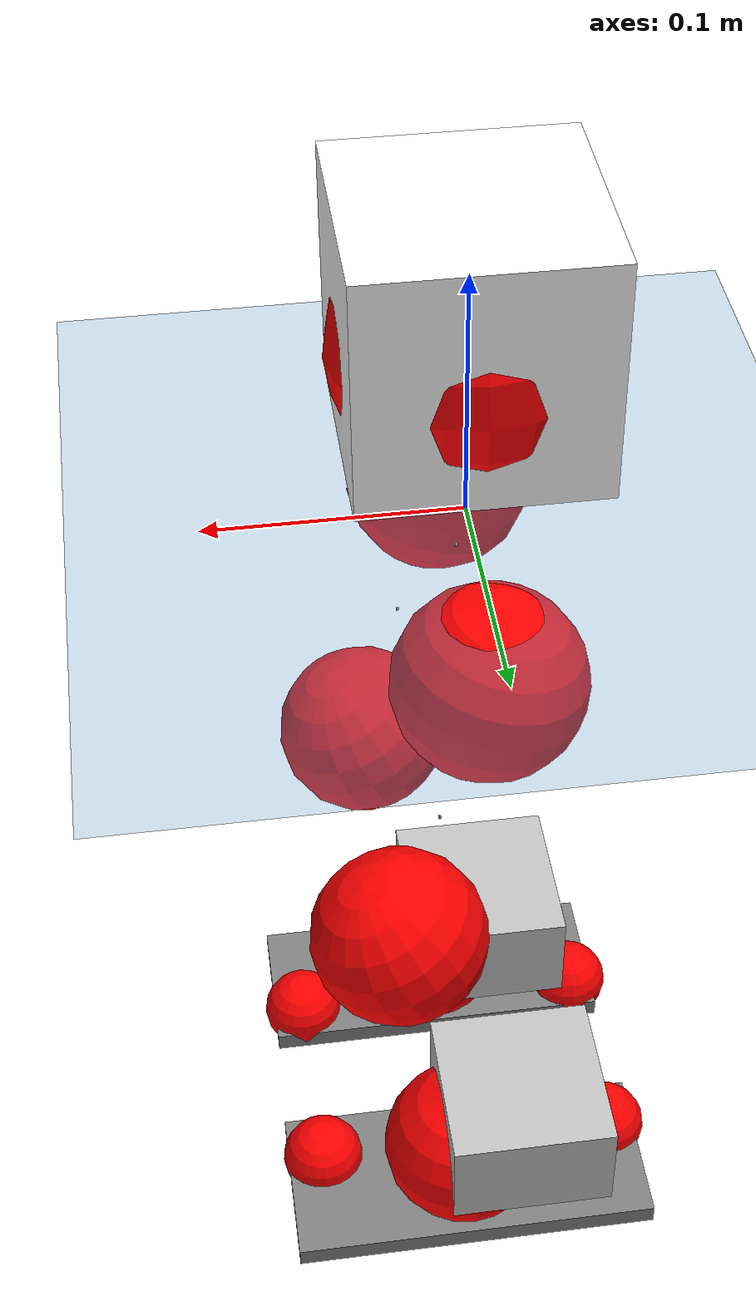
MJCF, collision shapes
<mujoco model="pi_12dof_release_v1">
  <compiler angle="radian" assetdir="assets" balanceinertia="true" inertiafromgeom="false"/>

  <option timestep="0.005" density="1.2" viscosity="2e-05"/>

  <size nkey="1"/>

  <visual>
    <quality shadowsize="8192"/>
    <map shadowclip="0.5"/>
  </visual>

  <default>
    <default class="/">
      <joint armature="0.01" damping="0.01" frictionloss="0.01"/>
      <geom contype="0" conaffinity="0" group="1" solref="-1000 -80"/>
      <site size="0.01 0.005 0.005" group="5"/>
      <general forcelimited="true" biastype="affine" gainprm="20" biasprm="0 -20 -0.5"/>
      <default class="foot">
        <geom size="0.0845 0.036 0.005" type="box" condim="6" group="4" priority="1" friction="0.9 0.2 0.2" solimp="0.015 1 0.005"/>
      </default>
      <default class="reward_collision_sphere">
        <geom group="5" rgba="1 0 0 1"/>
      </default>
    </default>
  </default>

  <asset>
    <texture type="skybox" colorspace="auto" name="//unnamed_texture_0" builtin="gradient" rgb1="0.95 0.95 0.95" rgb2="0.95 0.95 0.95" width="100" height="600"/>
    <texture type="2d" colorspace="auto" name="texplane" builtin="checker" rgb1="0.345 0.575 0.748" rgb2="0.345 0.575 0.748" markrgb="1 1 1" width="512" height="512"/>
    <material name="MatPlane" class="/" texture="texplane" texuniform="true" texrepeat="2 2" specular="0.9"/>
    <mesh name="baselink_1" class="/" file="baselink_1.STL"/>
    <mesh name="r_hip_pitch_link" class="/" file="r_hip_pitch_link.STL"/>
    <mesh name="r_hip_roll_link" class="/" file="r_hip_roll_link.STL"/>
    <mesh name="r_thigh_link" class="/" file="r_thigh_link.STL"/>
    <mesh name="r_calf_link" class="/" file="r_calf_link.STL"/>
    <mesh name="r_ankle_pitch_link" class="/" file="r_ankle_pitch_link.STL"/>
    <mesh name="r_ankle_roll_link" class="/" file="r_ankle_roll_link.STL"/>
    <mesh name="l_hip_pitch_link" class="/" file="l_hip_pitch_link.STL"/>
    <mesh name="l_hip_roll_link" class="/" file="l_hip_roll_link.STL"/>
    <mesh name="l_thigh_link" class="/" file="l_thigh_link.STL"/>
    <mesh name="l_calf_link" class="/" file="l_calf_link.STL"/>
    <mesh name="l_ankle_pitch_link" class="/" file="l_ankle_pitch_link.STL"/>
    <mesh name="l_ankle_roll_link" class="/" file="l_ankle_roll_link.STL"/>
  </asset>

  <worldbody>
    <geom name="floor" class="/" size="100 100 0.125" type="plane" group="0" material="MatPlane"/>
    <light name="toplight_shadow" class="/" pos="0 0 5" dir="0.0990148 0.0990148 -0.990148" type="directional" ambient="0.04 0.04 0.04" diffuse="0.55 0.55 0.55" specular="0.12 0.12 0.12"/>
    <light name="toplight_fill" class="/" pos="0 0 5" dir="0.0990148 0.0990148 -0.990148" type="directional" castshadow="false" ambient="0.04 0.04 0.04" diffuse="0.3 0.3 0.3" specular="0.08 0.08 0.08"/>
    <body name="trunk" pos="0.000164802 -0.000365653 0.000290339" quat="1 -0.00017164 0.000140604 -3.43265e-05">
      <inertial pos="0.00225567 -0.000751024 0.0408398" quat="0.694344 0.00929943 0.00522536 0.719564" mass="1.72267" diaginertia="0.00971067 0.00257733 0.00448746"/>
      <joint name="//unnamed_joint_0" type="free"/>
      <geom name="//unnamed_geom_1" class="/" type="mesh" density="0" rgba="1 1 1 1" mesh="baselink_1"/>
      <geom name="//unnamed_geom_2" class="/" size="0.0465555 0.0465555 0.0465555" pos="0 0 0.0811484" type="box" rgba="1 1 1 1"/>
      <geom name="//unnamed_geom_3" class="reward_collision_sphere" size="0.0512111" pos="0 0 0.0710048"/>
      <site name="imu" class="/" pos="0.00157605 -0.00118907 -0.00383314" size="0.0093111"/>
      <camera name="track" class="/" pos="0 -1.56047 0" quat="0.707107 0.707107 0 0" mode="trackcom"/>
      <camera name="ego_camera" class="/" pos="0.0749054 0 0.182584" quat="-0.5 -0.5 0.5 0.5"/>
      <body name="r_hip_pitch_link" pos="0.000293504 -0.0176077 -0.0324405" quat="0.992194 -7.52465e-05 -0.124707 -0.000107317">
        <inertial pos="0.000601765 -0.0427899 -3.76207e-05" quat="-0.0187604 0.705991 -0.0284363 0.707401" mass="0.297398" diaginertia="0.000107396 2.86667e-05 8.92589e-05"/>
        <joint name="r_hip_pitch_joint" class="/" pos="0 0 0" axis="-0.00557478 -0.999983 0.00147349" range="-1.73666 1.23252" armature="0.00928873" damping="0.0159747" frictionloss="0.0092981"/>
        <geom name="//unnamed_geom_4" class="/" type="mesh" density="0" rgba="0.75294 0.75294 0.75294 1" mesh="r_hip_pitch_link"/>
        <geom name="//unnamed_geom_5" class="/" size="0.000465555 0.000465555 0.000465555" type="box" rgba="0.75294 0.75294 0.75294 1"/>
        <body name="r_hip_roll_link" pos="0.00125952 -0.0435062 0.000371345" quat="1 -0.000382711 -2.7263e-05 0.000176427">
          <inertial pos="-0.00125727 -0.000305776 -0.0636064" quat="0.706027 -0.0795572 -0.0789564 0.699258" mass="0.312801" diaginertia="0.000332358 8.05069e-05 0.00013809"/>
          <joint name="r_hip_roll_joint" class="/" pos="0 0 0" axis="-0.999999 0.00129164 0.00047294" range="-0.11343 0.496244" armature="0.0091923" damping="0.0117014" frictionloss="0.00963996"/>
          <geom name="//unnamed_geom_6" class="/" type="mesh" density="0" rgba="0.75294 0.75294 0.75294 1" mesh="r_hip_roll_link"/>
          <geom name="//unnamed_geom_7" class="/" size="0.000465555 0.000465555 0.000465555" type="box" rgba="0.75294 0.75294 0.75294 1"/>
          <geom name="//unnamed_geom_8" class="reward_collision_sphere" size="0.0372444"/>
          <body name="r_thigh_link" pos="-0.000315639 -0.000157714 -0.0705481" quat="1 -9.35233e-06 0.000269517 7.78141e-05">
            <inertial pos="-0.000442192 0.000626379 -0.0481817" quat="0.736204 0.676756 -0.00144409 -0.00145327" mass="0.0888806" diaginertia="0.000123622 2.70247e-05 6.16079e-05"/>
            <joint name="r_thigh_joint" class="/" pos="0 0 0" axis="-0.000930382 0.00310726 -0.999995" range="-0.315977 0.607057" armature="0.00931925" damping="0.00391764" frictionloss="0.00963976"/>
            <geom name="//unnamed_geom_9" class="/" type="mesh" density="0" rgba="0.75294 0.75294 0.75294 1" mesh="r_thigh_link"/>
            <geom name="//unnamed_geom_10" class="/" size="0.000465555 0.000465555 0.000465555" type="box" rgba="0.75294 0.75294 0.75294 1"/>
            <body name="r_calf_link" pos="-0.00107301 -0.000281933 -0.0713497" quat="0.947621 -8.37391e-05 0.319396 2.79221e-05">
              <inertial pos="0.000292656 -0.000793555 -0.0714707" quat="0.999969 -0.00617638 -0.00319686 0.00371231" mass="0.66464" diaginertia="0.00354168 0.00103134 0.000188829"/>
              <joint name="r_calf_joint" class="/" pos="0 0 0" axis="0.00203742 -0.999976 0.00666932" range="-1.64742 0.646615" armature="0.0089378" damping="0.0063137" frictionloss="0.00912082"/>
              <geom name="//unnamed_geom_11" class="/" type="mesh" density="0" rgba="0.75294 0.75294 0.75294 1" mesh="r_calf_link"/>
              <geom name="//unnamed_geom_12" class="/" size="0.000465555 0.000465555 0.000465555" type="box" rgba="0.75294 0.75294 0.75294 1"/>
              <geom name="//unnamed_geom_13" class="reward_collision_sphere" size="0.0372444"/>
              <body name="r_ankle_pitch_link" pos="0.000695693 0.0010866 -0.142765" quat="0.980061 6.65105e-07 -0.198698 -5.23666e-05">
                <inertial pos="0.00570447 0.00415877 0.000253811" quat="0.00174517 0.707007 -0.00236807 0.707201" mass="0.141988" diaginertia="0.000303944 6.44374e-05 0.000128531"/>
                <joint name="r_ankle_pitch_joint" class="/" pos="0 0 0" axis="0.00247422 -0.999994 0.00249077" range="-1.30809 0.498893" armature="0.00936718" damping="0.00582582" frictionloss="0.00965552"/>
                <geom name="//unnamed_geom_14" class="/" type="mesh" density="0" rgba="0.75294 0.75294 0.75294 1" mesh="r_ankle_pitch_link"/>
                <geom name="//unnamed_geom_15" class="/" size="0.0363133 0.0372444 0.0232778" type="box" rgba="0.75294 0.75294 0.75294 1"/>
                <body name="r_ankle_roll_link" pos="0.0761842 0.00165219 4.39622e-05" quat="1 0.000199198 -0.000191806 -0.000427573">
                  <inertial pos="-0.0226589 0.000961929 -0.0150205" quat="0.55947 0.430838 0.436126 0.557823" mass="0.417871" diaginertia="0.00110789 0.00029669 0.000306343"/>
                  <joint name="r_ankle_roll_joint" class="/" pos="0 0 0" axis="-0.999993 -0.00108214 -0.00353484" range="-0.152077 0.144434" armature="0.00949831" damping="0.00949174" frictionloss="0.00913855"/>
                  <geom name="//unnamed_geom_16" class="/" type="mesh" density="0" rgba="0.75294 0.75294 0.75294 1" mesh="r_ankle_roll_link"/>
                  <geom name="//unnamed_geom_17" class="/" type="mesh" rgba="0.75294 0.75294 0.75294 1" mesh="r_ankle_roll_link"/>
                  <geom name="right_foot" class="foot" size="0.0799155 0.0332825 0.0045423" pos="-0.0509357 0 -0.0446316"/>
                  <geom name="//unnamed_geom_19" class="reward_collision_sphere" size="0.0372444" pos="-0.049937 0 -0.0202871"/>
                  <geom name="//unnamed_geom_20" class="reward_collision_sphere" size="0.0186222" pos="0.0149811 0.0156047 -0.0405742"/>
                  <geom name="//unnamed_geom_21" class="reward_collision_sphere" size="0.0186222" pos="-0.119849 0.0156047 -0.0405742"/>
                  <site name="right_foot" class="foot" pos="-0.0509357 0 -0.0446316" size="0.0093111"/>
                </body>
              </body>
            </body>
          </body>
        </body>
      </body>
      <body name="l_hip_pitch_link" pos="0.00120911 0.0188737 -0.0330758" quat="0.992217 5.89195e-06 -0.12452 -0.000144344">
        <inertial pos="0.00145477 0.0406683 -0.000118628" quat="-0.0385916 0.705606 0.0295549 0.706936" mass="0.31789" diaginertia="0.000127083 3.04553e-05 0.000108369"/>
        <joint name="l_hip_pitch_joint" class="/" pos="0 0 0" axis="0.000658687 0.99998 0.00632353" range="-1.25556 1.75977" armature="0.0089839" damping="0.014627" frictionloss="0.00894456"/>
        <geom name="//unnamed_geom_22" class="/" type="mesh" density="0" rgba="0.75294 0.75294 0.75294 1" mesh="l_hip_pitch_link"/>
        <geom name="//unnamed_geom_23" class="/" size="0.000465555 0.000465555 0.000465555" type="box" rgba="0.75294 0.75294 0.75294 1"/>
        <body name="l_hip_roll_link" pos="-0.000897588 0.043079 0.000440218" quat="1 -7.52389e-05 0.000321558 -2.76842e-05">
          <inertial pos="-0.00154238 0.000781627 -0.0620203" quat="0.699424 -0.0744367 -0.0755305 0.706796" mass="0.312801" diaginertia="0.000331594 7.92372e-05 0.0001349"/>
          <joint name="l_hip_roll_joint" class="/" pos="0 0 0" axis="-0.999988 -0.000962146 0.00489618" range="-0.505154 0.105584" armature="0.00916135" damping="0.00804178" frictionloss="0.00974298"/>
          <geom name="//unnamed_geom_24" class="/" type="mesh" density="0" rgba="0.75294 0.75294 0.75294 1" mesh="l_hip_roll_link"/>
          <geom name="//unnamed_geom_25" class="/" size="0.000465555 0.000465555 0.000465555" type="box" rgba="0.75294 0.75294 0.75294 1"/>
          <geom name="//unnamed_geom_26" class="reward_collision_sphere" size="0.0372444"/>
          <body name="l_thigh_link" pos="0.00039579 -0.000350652 -0.0713724" quat="1 4.53385e-05 -0.000281161 0.000355459">
            <inertial pos="0.000797283 -0.00148601 -0.0470921" quat="0.67693 0.736036 0.00210559 0.00339115" mass="0.0906682" diaginertia="0.000124244 2.76202e-05 6.22357e-05"/>
            <joint name="l_thigh_joint" class="/" pos="0 0 0" axis="0.000737168 -6.70084e-05 -1" range="-0.613783 0.294169" armature="0.00932334" damping="0.00205423" frictionloss="0.00925141"/>
            <geom name="//unnamed_geom_27" class="/" type="mesh" density="0" rgba="0.75294 0.75294 0.75294 1" mesh="l_thigh_link"/>
            <geom name="//unnamed_geom_28" class="/" size="0.000465555 0.000465555 0.000465555" type="box" rgba="0.75294 0.75294 0.75294 1"/>
            <body name="l_calf_link" pos="-0.00104071 -0.000603288 -0.0710285" quat="0.947667 2.29426e-05 0.319259 -1.42241e-05">
              <inertial pos="-0.000527698 0.00153331 -0.0713562" quat="0.99997 0.0038027 0.00300241 0.00610435" mass="0.652437" diaginertia="0.00343769 0.000994814 0.000184185"/>
              <joint name="l_calf_joint" class="/" pos="0 0 0" axis="-0.00302386 0.999995 -0.000246514" range="-0.665663 1.64555" armature="0.00930367" damping="0.00667244" frictionloss="0.0094065"/>
              <geom name="//unnamed_geom_29" class="/" type="mesh" density="0" rgba="0.75294 0.75294 0.75294 1" mesh="l_calf_link"/>
              <geom name="//unnamed_geom_30" class="/" size="0.000465555 0.000465555 0.000465555" type="box" rgba="0.75294 0.75294 0.75294 1"/>
              <geom name="//unnamed_geom_31" class="reward_collision_sphere" size="0.0372444"/>
              <body name="l_ankle_pitch_link" pos="0.000747265 0.000578539 -0.141558" quat="0.980077 3.41818e-05 -0.198616 -5.92616e-05">
                <inertial pos="0.00499758 -0.00049942 0.000337079" quat="-0.0071144 0.705091 0.00278331 0.709076" mass="0.141606" diaginertia="0.00030742 6.41076e-05 0.000130906"/>
                <joint name="l_ankle_pitch_joint" class="/" pos="0 0 0" axis="-0.0010816 0.999998 0.00155306" stiffness="0.000117526" range="-0.522041 1.28505" armature="0.00917337" damping="0.0032536" frictionloss="0.00954286"/>
                <geom name="//unnamed_geom_32" class="/" type="mesh" density="0" rgba="0.75294 0.75294 0.75294 1" mesh="l_ankle_pitch_link"/>
                <geom name="//unnamed_geom_33" class="/" size="0.0363133 0.0372444 0.0232778" type="box" rgba="0.75294 0.75294 0.75294 1"/>
                <body name="l_ankle_roll_link" pos="0.0754121 -1.34423e-05 0.00035233" quat="1 5.27773e-08 -9.93286e-05 -2.57766e-05">
                  <inertial pos="-0.0249236 -0.00162682 -0.014121" quat="0.559558 0.429573 0.434324 0.560111" mass="0.418434" diaginertia="0.00113813 0.000298469 0.000304425"/>
                  <joint name="l_ankle_roll_joint" class="/" pos="0 0 0" axis="-0.999999 0.00132305 -8.76619e-05" range="-0.142648 0.170448" armature="0.00944143" damping="0.0101668" frictionloss="0.00934499"/>
                  <geom name="//unnamed_geom_34" class="/" type="mesh" density="0" rgba="0.75294 0.75294 0.75294 1" mesh="l_ankle_roll_link"/>
                  <geom name="//unnamed_geom_35" class="/" type="mesh" rgba="0.75294 0.75294 0.75294 1" mesh="l_ankle_roll_link"/>
                  <geom name="left_foot" class="foot" size="0.0822478 0.0361579 0.00466976" pos="-0.0509357 0 -0.0446316"/>
                  <geom name="//unnamed_geom_37" class="reward_collision_sphere" size="0.0372444" pos="-0.049937 0 -0.0202871"/>
                  <geom name="//unnamed_geom_38" class="reward_collision_sphere" size="0.0186222" pos="0.0149811 -0.0156047 -0.0405742"/>
                  <geom name="//unnamed_geom_39" class="reward_collision_sphere" size="0.0186222" pos="-0.119849 -0.0156047 -0.0405742"/>
                  <site name="left_foot" class="foot" pos="-0.0509357 0 -0.0446316" size="0.0093111"/>
                </body>
              </body>
            </body>
          </body>
        </body>
      </body>
    </body>
  </worldbody>

  <contact>
    <pair class="/" geom1="floor" geom2="right_foot" name="//unnamed_contact_1"/>
    <pair class="/" geom1="floor" geom2="left_foot" name="//unnamed_contact_0"/>
  </contact>

  <actuator>
    <general name="r_hip_pitch_joint" class="/" joint="r_hip_pitch_joint" forcerange="-19.0912 19.0912" gainprm="18.652" biasprm="0 -18.652 -0.466903"/>
    <general name="r_hip_roll_joint" class="/" joint="r_hip_roll_joint" forcerange="-19.8239 19.8239" gainprm="18.652" biasprm="0 -18.652 -0.466903"/>
    <general name="r_thigh_joint" class="/" joint="r_thigh_joint" forcerange="-19.8097 19.8097" gainprm="18.652" biasprm="0 -18.652 -0.466903"/>
    <general name="r_calf_joint" class="/" joint="r_calf_joint" forcerange="-20.1459 20.1459" gainprm="18.652" biasprm="0 -18.652 -0.466903"/>
    <general name="r_ankle_pitch_joint" class="/" joint="r_ankle_pitch_joint" forcerange="-19.2863 19.2863" gainprm="18.652" biasprm="0 -18.652 -0.466903"/>
    <general name="r_ankle_roll_joint" class="/" joint="r_ankle_roll_joint" forcerange="-19.6894 19.6894" gainprm="18.652" biasprm="0 -18.652 -0.466903"/>
    <general name="l_hip_pitch_joint" class="/" joint="l_hip_pitch_joint" forcerange="-19.5927 19.5927" gainprm="18.652" biasprm="0 -18.652 -0.466903"/>
    <general name="l_hip_roll_joint" class="/" joint="l_hip_roll_joint" forcerange="-19.7179 19.7179" gainprm="18.652" biasprm="0 -18.652 -0.466903"/>
    <general name="l_thigh_joint" class="/" joint="l_thigh_joint" forcerange="-19.1337 19.1337" gainprm="18.652" biasprm="0 -18.652 -0.466903"/>
    <general name="l_calf_joint" class="/" joint="l_calf_joint" forcerange="-19.4912 19.4912" gainprm="18.652" biasprm="0 -18.652 -0.466903"/>
    <general name="l_ankle_pitch_joint" class="/" joint="l_ankle_pitch_joint" forcerange="-19.5914 19.5914" gainprm="18.652" biasprm="0 -18.652 -0.466903"/>
    <general name="l_ankle_roll_joint" class="/" joint="l_ankle_roll_joint" forcerange="-18.8573 18.8573" gainprm="18.652" biasprm="0 -18.652 -0.466903"/>
  </actuator>

  <sensor>
    <gyro site="imu" name="imu_angular_velocity"/>
    <velocimeter site="imu" name="imu_linear_velocity"/>
    <framelinvel objtype="site" objname="left_foot" name="left_foot_global_linear_velocity"/>
    <framelinvel objtype="site" objname="right_foot" name="right_foot_global_linear_velocity"/>
  </sensor>

  <keyframe>
    <key name="home" qpos="0 0 0.291 1 0 0 0 0.4 0 0 -0.8 0.4 0 -0.4 0 0 0.8 -0.4 0"/>
  </keyframe>
</mujoco>
